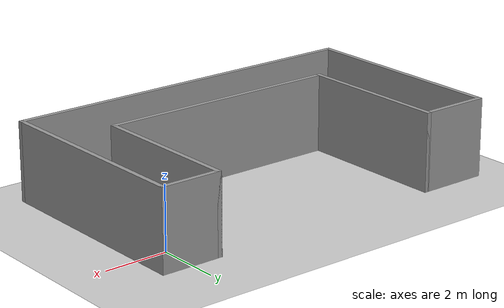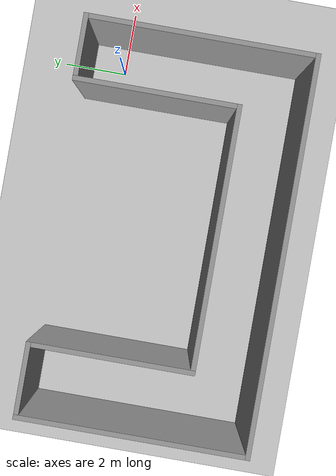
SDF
<sdf version="1.7">
 <world name="default">
  <light name="sun" type="directional">
   <pose>0 0 10 0 -0 0</pose>
   <diffuse>0.8 0.8 0.8 1</diffuse>
   <specular>0.2 0.2 0.2 1</specular>
   <attenuation>
    <range>1000</range>
    <constant>0.9</constant>
    <linear>0.01</linear>
    <quadratic>0.001</quadratic>
   </attenuation>
   <direction>-0.5 0.1 -0.9</direction>
   <spot><inner_angle>0</inner_angle><outer_angle>0</outer_angle><falloff>0</falloff></spot>
  </light>
  <model name="ground_plane">
   <static>1</static>
   <link name="link">
    <collision name="collision">
     <geometry><plane><normal>0 0 1</normal><size>100 100</size></plane></geometry>
     <surface>
      <contact><collide_bitmask>65535</collide_bitmask></contact>
      <friction><ode><mu>100</mu><mu2>50</mu2></ode></friction>
     </surface>
    </collision>
    <visual name="visual">
     <cast_shadows>0</cast_shadows>
     <geometry><plane><normal>0 0 1</normal><size>100 100</size></plane></geometry>
     <material>
      <script><uri>file://media/materials/scripts/gazebo.material</uri><name>Gazebo/Grey</name></script>
     </material>
    </visual>
   </link>
  </model>
  <gravity>0 0 -9.8</gravity>
  <magnetic_field>6e-06 2.3e-05 -4.2e-05</magnetic_field>
  <atmosphere type="adiabatic"/>
  <physics type="ode">
   <max_step_size>0.001</max_step_size>
   <real_time_factor>1</real_time_factor>
   <real_time_update_rate>1000</real_time_update_rate>
  </physics>
  <scene><ambient>0.4 0.4 0.4 1</ambient><background>0.7 0.7 0.7 1</background><shadows>1</shadows></scene>
  <spherical_coordinates>
   <surface_model>EARTH_WGS84</surface_model>
   <latitude_deg>0</latitude_deg>
   <longitude_deg>0</longitude_deg>
   <elevation>0</elevation>
   <heading_deg>0</heading_deg>
  </spherical_coordinates>
  <model name="u_shape_2_m">
   <pose>-4.5 -3 0 0 -0 0</pose>
   <link name="Wall_10">
    <collision name="Wall_10_Collision">
     <geometry><box><size>12 0.15 2.5</size></box></geometry>
     <pose>0 0 1.25 0 -0 0</pose>
    </collision>
    <visual name="Wall_10_Visual">
     <pose>0 0 1.25 0 -0 0</pose>
     <geometry><box><size>12 0.15 2.5</size></box></geometry>
     <material>
      <script><uri>file://media/materials/scripts/gazebo.material</uri><name>Gazebo/Grey</name></script>
      <ambient>1 1 1 1</ambient>
     </material>
     <meta><layer>0</layer></meta>
    </visual>
    <pose>-0.511959 -2.71682 0 0 -0 3.14159</pose>
   </link>
   <link name="Wall_11">
    <collision name="Wall_11_Collision">
     <geometry><box><size>7 0.15 2.5</size></box></geometry>
     <pose>0 0 1.25 0 -0 0</pose>
    </collision>
    <visual name="Wall_11_Visual">
     <pose>0 0 1.25 0 -0 0</pose>
     <geometry><box><size>7 0.15 2.5</size></box></geometry>
     <material>
      <script><uri>file://media/materials/scripts/gazebo.material</uri><name>Gazebo/Grey</name></script>
      <ambient>1 1 1 1</ambient>
     </material>
     <meta><layer>0</layer></meta>
    </visual>
    <pose>-6.43696 0.708177 0 0 -0 1.5708</pose>
   </link>
   <link name="Wall_12">
    <collision name="Wall_12_Collision">
     <geometry><box><size>2.3 0.15 2.5</size></box></geometry>
     <pose>0 0 1.25 0 -0 0</pose>
    </collision>
    <visual name="Wall_12_Visual">
     <pose>0 0 1.25 0 -0 0</pose>
     <geometry><box><size>2.3 0.15 2.5</size></box></geometry>
     <material>
      <script><uri>file://media/materials/scripts/gazebo.material</uri><name>Gazebo/Grey</name></script>
      <ambient>1 1 1 1</ambient>
     </material>
     <meta><layer>0</layer></meta>
    </visual>
    <pose>-5.36196 4.13318 0 0 -0 0</pose>
   </link>
   <link name="Wall_2">
    <collision name="Wall_2_Collision">
     <geometry><box><size>5 0.15 2.5</size></box></geometry>
     <pose>0 0 1.25 0 -0 0</pose>
    </collision>
    <visual name="Wall_2_Visual">
     <pose>0 0 1.25 0 -0 0</pose>
     <geometry><box><size>5 0.15 2.5</size></box></geometry>
     <material>
      <script><uri>file://media/materials/scripts/gazebo.material</uri><name>Gazebo/Grey</name></script>
      <ambient>1 1 1 1</ambient>
     </material>
     <meta><layer>0</layer></meta>
    </visual>
    <pose>-4.28696 1.70818 0 0 -0 -1.5708</pose>
   </link>
   <link name="Wall_4">
    <collision name="Wall_4_Collision">
     <geometry><box><size>8 0.15 2.5</size></box></geometry>
     <pose>0 0 1.25 0 -0 0</pose>
    </collision>
    <visual name="Wall_4_Visual">
     <pose>0 0 1.25 0 -0 0</pose>
     <geometry><box><size>8 0.15 2.5</size></box></geometry>
     <material>
      <script><uri>file://media/materials/scripts/gazebo.material</uri><name>Gazebo/Grey</name></script>
      <ambient>1 1 1 1</ambient>
     </material>
     <meta><layer>0</layer></meta>
    </visual>
    <pose>-0.361959 -0.716823 0 0 -0 0</pose>
   </link>
   <link name="Wall_5">
    <collision name="Wall_5_Collision">
     <geometry><box><size>5 0.15 2.5</size></box></geometry>
     <pose>0 0 1.25 0 -0 0</pose>
    </collision>
    <visual name="Wall_5_Visual">
     <pose>0 0 1.25 0 -0 0</pose>
     <geometry><box><size>5 0.15 2.5</size></box></geometry>
     <material>
      <script><uri>file://media/materials/scripts/gazebo.material</uri><name>Gazebo/Grey</name></script>
      <ambient>1 1 1 1</ambient>
     </material>
     <meta><layer>0</layer></meta>
    </visual>
    <pose>3.56304 1.70818 0 0 -0 1.5708</pose>
   </link>
   <link name="Wall_6">
    <collision name="Wall_6_Collision">
     <geometry><box><size>2 0.15 2.5</size></box></geometry>
     <pose>0 0 1.25 0 -0 0</pose>
    </collision>
    <visual name="Wall_6_Visual">
     <pose>0 0 1.25 0 -0 0</pose>
     <geometry><box><size>2 0.15 2.5</size></box></geometry>
     <material>
      <script><uri>file://media/materials/scripts/gazebo.material</uri><name>Gazebo/Grey</name></script>
      <ambient>1 1 1 1</ambient>
     </material>
     <meta><layer>0</layer></meta>
    </visual>
    <pose>4.48804 4.13318 0 0 -0 0</pose>
   </link>
   <link name="Wall_7">
    <collision name="Wall_7_Collision">
     <geometry><box><size>7 0.15 2.5</size></box></geometry>
     <pose>0 0 1.25 0 -0 0</pose>
    </collision>
    <visual name="Wall_7_Visual">
     <pose>0 0 1.25 0 -0 0</pose>
     <geometry><box><size>7 0.15 2.5</size></box></geometry>
     <material>
      <script><uri>file://media/materials/scripts/gazebo.material</uri><name>Gazebo/Grey</name></script>
      <ambient>1 1 1 1</ambient>
     </material>
     <meta><layer>0</layer></meta>
    </visual>
    <pose>5.41304 0.708177 0 0 -0 -1.5708</pose>
   </link>
   <static>1</static>
  </model>
 </world>
</sdf>
